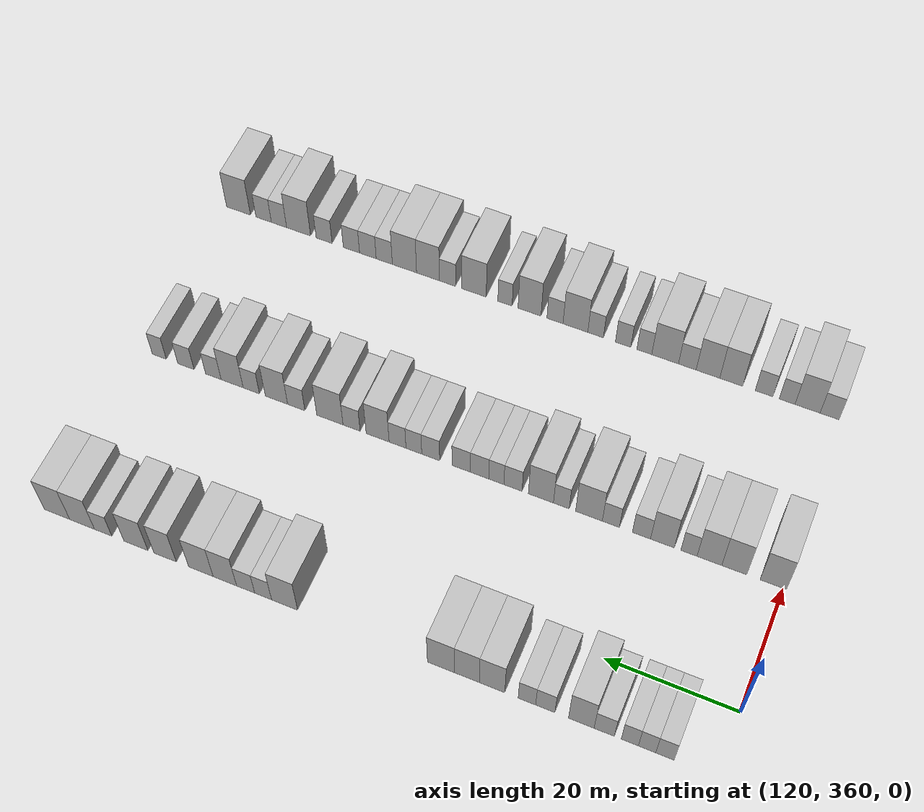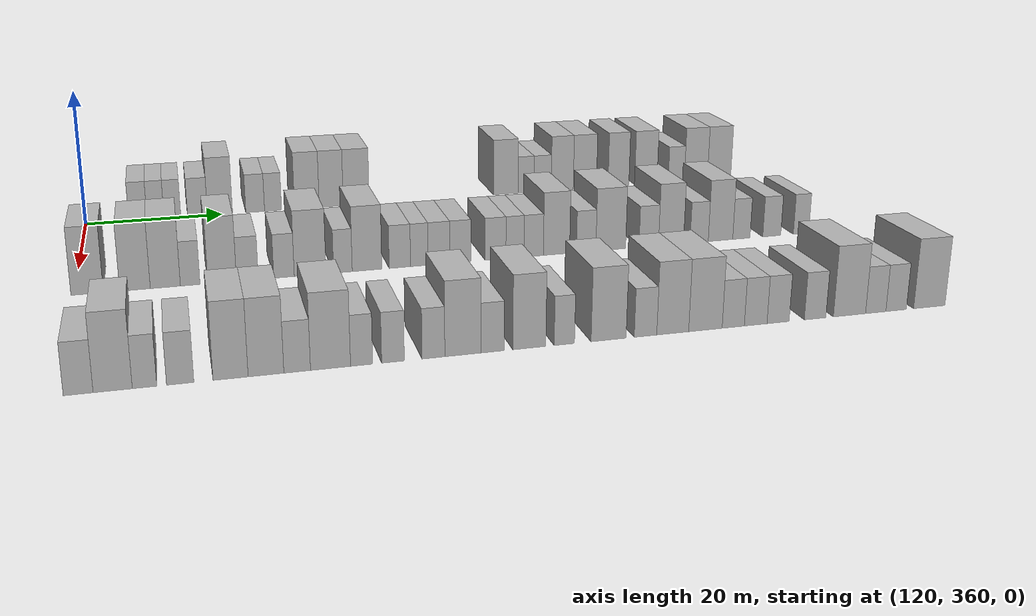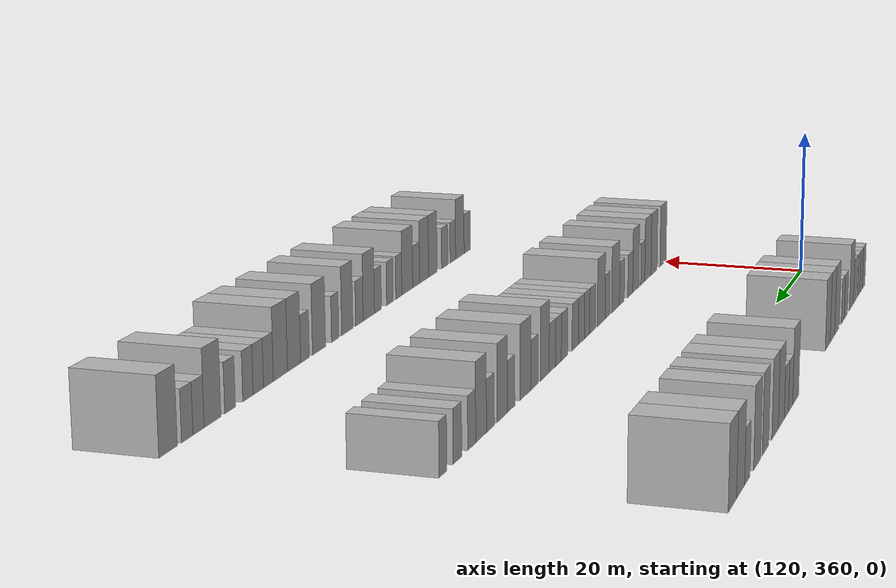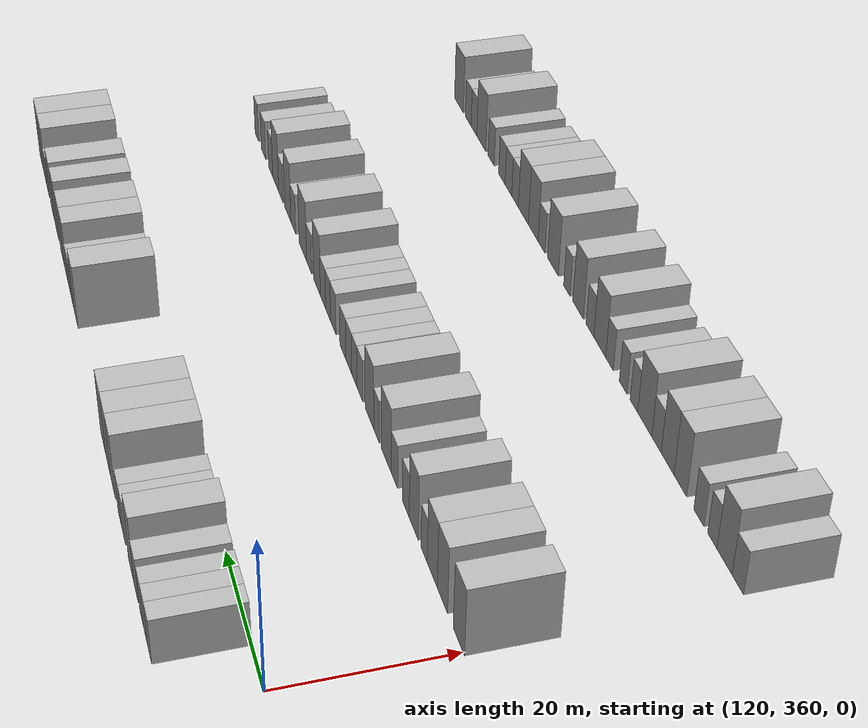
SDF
<sdf version="1.6">
 <world name="default">
  <model name="building_875">
   <static>1</static>
   <pose>115.0000 367.5334 0 0.000000 0.000000 0.000000</pose>
   <link name="link">
    <pose>0 0 3.00 0 0 0</pose>
    <collision name="collision"><geometry><box><size>10.0000 2.6521 6.0000</size></box></geometry></collision>
    <visual name="visual">
     <cast_shadows>0</cast_shadows>
     <geometry><box><size>10.0000 2.6521 6.0000</size></box></geometry>
     <material>
      <script>
       <uri>model://HANNAS_wall/materials/scripts</uri>
       <uri>model://HANNAS_wall/materials/textures</uri>
       <name>vrc/HANNAS_wall</name>
      </script>
     </material>
    </visual>
   </link>
  </model>
  <model name="building_876">
   <static>1</static>
   <pose>115.0000 370.1049 0 0.000000 0.000000 0.000000</pose>
   <link name="link">
    <pose>0 0 3.00 0 0 0</pose>
    <collision name="collision"><geometry><box><size>10.0000 2.4908 6.0000</size></box></geometry></collision>
    <visual name="visual">
     <cast_shadows>0</cast_shadows>
     <geometry><box><size>10.0000 2.4908 6.0000</size></box></geometry>
     <material>
      <script>
       <uri>model://HANNAS_wall/materials/scripts</uri>
       <uri>model://HANNAS_wall/materials/textures</uri>
       <name>vrc/HANNAS_wall</name>
      </script>
     </material>
    </visual>
   </link>
  </model>
  <model name="building_877">
   <static>1</static>
   <pose>115.0000 372.5873 0 0.000000 0.000000 0.000000</pose>
   <link name="link">
    <pose>0 0 3.00 0 0 0</pose>
    <collision name="collision"><geometry><box><size>10.0000 2.4740 6.0000</size></box></geometry></collision>
    <visual name="visual">
     <cast_shadows>0</cast_shadows>
     <geometry><box><size>10.0000 2.4740 6.0000</size></box></geometry>
     <material>
      <script>
       <uri>model://HANNAS_wall/materials/scripts</uri>
       <uri>model://HANNAS_wall/materials/textures</uri>
       <name>vrc/HANNAS_wall</name>
      </script>
     </material>
    </visual>
   </link>
  </model>
  <model name="building_878">
   <static>1</static>
   <pose>115.0000 376.3012 0 0.000000 0.000000 0.000000</pose>
   <link name="link">
    <pose>0 0 3.00 0 0 0</pose>
    <collision name="collision"><geometry><box><size>10.0000 2.9538 6.0000</size></box></geometry></collision>
    <visual name="visual">
     <cast_shadows>0</cast_shadows>
     <geometry><box><size>10.0000 2.9538 6.0000</size></box></geometry>
     <material>
      <script>
       <uri>model://HANNAS_wall/materials/scripts</uri>
       <uri>model://HANNAS_wall/materials/textures</uri>
       <name>vrc/HANNAS_wall</name>
      </script>
     </material>
    </visual>
   </link>
  </model>
  <model name="building_879">
   <static>1</static>
   <pose>115.0000 379.6534 0 0.000000 0.000000 0.000000</pose>
   <link name="link">
    <pose>0 0 4.50 0 0 0</pose>
    <collision name="collision"><geometry><box><size>10.0000 3.7506 9.0000</size></box></geometry></collision>
    <visual name="visual">
     <cast_shadows>0</cast_shadows>
     <geometry><box><size>10.0000 3.7506 9.0000</size></box></geometry>
     <material>
      <script>
       <uri>model://HANNAS_wall/materials/scripts</uri>
       <uri>model://HANNAS_wall/materials/textures</uri>
       <name>vrc/HANNAS_wall</name>
      </script>
     </material>
    </visual>
   </link>
  </model>
  <model name="building_880">
   <static>1</static>
   <pose>115.0000 384.9515 0 0.000000 0.000000 0.000000</pose>
   <link name="link">
    <pose>0 0 3.00 0 0 0</pose>
    <collision name="collision"><geometry><box><size>10.0000 2.8456 6.0000</size></box></geometry></collision>
    <visual name="visual">
     <cast_shadows>0</cast_shadows>
     <geometry><box><size>10.0000 2.8456 6.0000</size></box></geometry>
     <material>
      <script>
       <uri>model://HANNAS_wall/materials/scripts</uri>
       <uri>model://HANNAS_wall/materials/textures</uri>
       <name>vrc/HANNAS_wall</name>
      </script>
     </material>
    </visual>
   </link>
  </model>
  <model name="building_881">
   <static>1</static>
   <pose>115.0000 387.6679 0 0.000000 0.000000 0.000000</pose>
   <link name="link">
    <pose>0 0 3.00 0 0 0</pose>
    <collision name="collision"><geometry><box><size>10.0000 2.5873 6.0000</size></box></geometry></collision>
    <visual name="visual">
     <cast_shadows>0</cast_shadows>
     <geometry><box><size>10.0000 2.5873 6.0000</size></box></geometry>
     <material>
      <script>
       <uri>model://HANNAS_wall/materials/scripts</uri>
       <uri>model://HANNAS_wall/materials/textures</uri>
       <name>vrc/HANNAS_wall</name>
      </script>
     </material>
    </visual>
   </link>
  </model>
  <model name="building_882">
   <static>1</static>
   <pose>115.0000 392.8706 0 0.000000 0.000000 0.000000</pose>
   <link name="link">
    <pose>0 0 4.50 0 0 0</pose>
    <collision name="collision"><geometry><box><size>10.0000 3.8180 9.0000</size></box></geometry></collision>
    <visual name="visual">
     <cast_shadows>0</cast_shadows>
     <geometry><box><size>10.0000 3.8180 9.0000</size></box></geometry>
     <material>
      <script>
       <uri>model://HANNAS_wall/materials/scripts</uri>
       <uri>model://HANNAS_wall/materials/textures</uri>
       <name>vrc/HANNAS_wall</name>
      </script>
     </material>
    </visual>
   </link>
  </model>
  <model name="building_883">
   <static>1</static>
   <pose>115.0000 396.6577 0 0.000000 0.000000 0.000000</pose>
   <link name="link">
    <pose>0 0 4.50 0 0 0</pose>
    <collision name="collision"><geometry><box><size>10.0000 3.7561 9.0000</size></box></geometry></collision>
    <visual name="visual">
     <cast_shadows>0</cast_shadows>
     <geometry><box><size>10.0000 3.7561 9.0000</size></box></geometry>
     <material>
      <script>
       <uri>model://HANNAS_wall/materials/scripts</uri>
       <uri>model://HANNAS_wall/materials/textures</uri>
       <name>vrc/HANNAS_wall</name>
      </script>
     </material>
    </visual>
   </link>
  </model>
  <model name="building_884">
   <static>1</static>
   <pose>115.0000 400.5764 0 0.000000 0.000000 0.000000</pose>
   <link name="link">
    <pose>0 0 4.50 0 0 0</pose>
    <collision name="collision"><geometry><box><size>10.0000 4.0813 9.0000</size></box></geometry></collision>
    <visual name="visual">
     <cast_shadows>0</cast_shadows>
     <geometry><box><size>10.0000 4.0813 9.0000</size></box></geometry>
     <material>
      <script>
       <uri>model://HANNAS_wall/materials/scripts</uri>
       <uri>model://HANNAS_wall/materials/textures</uri>
       <name>vrc/HANNAS_wall</name>
      </script>
     </material>
    </visual>
   </link>
  </model>
  <model name="building_885">
   <static>1</static>
   <pose>115.0000 424.7975 0 0.000000 0.000000 0.000000</pose>
   <link name="link">
    <pose>0 0 4.50 0 0 0</pose>
    <collision name="collision"><geometry><box><size>10.0000 4.1203 9.0000</size></box></geometry></collision>
    <visual name="visual">
     <cast_shadows>0</cast_shadows>
     <geometry><box><size>10.0000 4.1203 9.0000</size></box></geometry>
     <material>
      <script>
       <uri>model://HANNAS_wall/materials/scripts</uri>
       <uri>model://HANNAS_wall/materials/textures</uri>
       <name>vrc/HANNAS_wall</name>
      </script>
     </material>
    </visual>
   </link>
  </model>
  <model name="building_886">
   <static>1</static>
   <pose>115.0000 428.1959 0 0.000000 0.000000 0.000000</pose>
   <link name="link">
    <pose>0 0 3.00 0 0 0</pose>
    <collision name="collision"><geometry><box><size>10.0000 2.6764 6.0000</size></box></geometry></collision>
    <visual name="visual">
     <cast_shadows>0</cast_shadows>
     <geometry><box><size>10.0000 2.6764 6.0000</size></box></geometry>
     <material>
      <script>
       <uri>model://HANNAS_wall/materials/scripts</uri>
       <uri>model://HANNAS_wall/materials/textures</uri>
       <name>vrc/HANNAS_wall</name>
      </script>
     </material>
    </visual>
   </link>
  </model>
  <model name="building_887">
   <static>1</static>
   <pose>115.0000 430.9838 0 0.000000 0.000000 0.000000</pose>
   <link name="link">
    <pose>0 0 3.00 0 0 0</pose>
    <collision name="collision"><geometry><box><size>10.0000 2.8994 6.0000</size></box></geometry></collision>
    <visual name="visual">
     <cast_shadows>0</cast_shadows>
     <geometry><box><size>10.0000 2.8994 6.0000</size></box></geometry>
     <material>
      <script>
       <uri>model://HANNAS_wall/materials/scripts</uri>
       <uri>model://HANNAS_wall/materials/textures</uri>
       <name>vrc/HANNAS_wall</name>
      </script>
     </material>
    </visual>
   </link>
  </model>
  <model name="building_888">
   <static>1</static>
   <pose>115.0000 434.3149 0 0.000000 0.000000 0.000000</pose>
   <link name="link">
    <pose>0 0 4.50 0 0 0</pose>
    <collision name="collision"><geometry><box><size>10.0000 3.7628 9.0000</size></box></geometry></collision>
    <visual name="visual">
     <cast_shadows>0</cast_shadows>
     <geometry><box><size>10.0000 3.7628 9.0000</size></box></geometry>
     <material>
      <script>
       <uri>model://HANNAS_wall/materials/scripts</uri>
       <uri>model://HANNAS_wall/materials/textures</uri>
       <name>vrc/HANNAS_wall</name>
      </script>
     </material>
    </visual>
   </link>
  </model>
  <model name="building_889">
   <static>1</static>
   <pose>115.0000 438.1872 0 0.000000 0.000000 0.000000</pose>
   <link name="link">
    <pose>0 0 4.50 0 0 0</pose>
    <collision name="collision"><geometry><box><size>10.0000 3.9818 9.0000</size></box></geometry></collision>
    <visual name="visual">
     <cast_shadows>0</cast_shadows>
     <geometry><box><size>10.0000 3.9818 9.0000</size></box></geometry>
     <material>
      <script>
       <uri>model://HANNAS_wall/materials/scripts</uri>
       <uri>model://HANNAS_wall/materials/textures</uri>
       <name>vrc/HANNAS_wall</name>
      </script>
     </material>
    </visual>
   </link>
  </model>
  <model name="building_890">
   <static>1</static>
   <pose>115.0000 443.9997 0 0.000000 0.000000 0.000000</pose>
   <link name="link">
    <pose>0 0 4.50 0 0 0</pose>
    <collision name="collision"><geometry><box><size>10.0000 3.6431 9.0000</size></box></geometry></collision>
    <visual name="visual">
     <cast_shadows>0</cast_shadows>
     <geometry><box><size>10.0000 3.6431 9.0000</size></box></geometry>
     <material>
      <script>
       <uri>model://HANNAS_wall/materials/scripts</uri>
       <uri>model://HANNAS_wall/materials/textures</uri>
       <name>vrc/HANNAS_wall</name>
      </script>
     </material>
    </visual>
   </link>
  </model>
  <model name="building_891">
   <static>1</static>
   <pose>115.0000 448.7956 0 0.000000 0.000000 0.000000</pose>
   <link name="link">
    <pose>0 0 4.50 0 0 0</pose>
    <collision name="collision"><geometry><box><size>10.0000 3.9488 9.0000</size></box></geometry></collision>
    <visual name="visual">
     <cast_shadows>0</cast_shadows>
     <geometry><box><size>10.0000 3.9488 9.0000</size></box></geometry>
     <material>
      <script>
       <uri>model://HANNAS_wall/materials/scripts</uri>
       <uri>model://HANNAS_wall/materials/textures</uri>
       <name>vrc/HANNAS_wall</name>
      </script>
     </material>
    </visual>
   </link>
  </model>
  <model name="building_892">
   <static>1</static>
   <pose>115.0000 454.2060 0 0.000000 0.000000 0.000000</pose>
   <link name="link">
    <pose>0 0 3.00 0 0 0</pose>
    <collision name="collision"><geometry><box><size>10.0000 2.8719 6.0000</size></box></geometry></collision>
    <visual name="visual">
     <cast_shadows>0</cast_shadows>
     <geometry><box><size>10.0000 2.8719 6.0000</size></box></geometry>
     <material>
      <script>
       <uri>model://HANNAS_wall/materials/scripts</uri>
       <uri>model://HANNAS_wall/materials/textures</uri>
       <name>vrc/HANNAS_wall</name>
      </script>
     </material>
    </visual>
   </link>
  </model>
  <model name="building_893">
   <static>1</static>
   <pose>115.0000 457.7169 0 0.000000 0.000000 0.000000</pose>
   <link name="link">
    <pose>0 0 4.50 0 0 0</pose>
    <collision name="collision"><geometry><box><size>10.0000 4.1500 9.0000</size></box></geometry></collision>
    <visual name="visual">
     <cast_shadows>0</cast_shadows>
     <geometry><box><size>10.0000 4.1500 9.0000</size></box></geometry>
     <material>
      <script>
       <uri>model://HANNAS_wall/materials/scripts</uri>
       <uri>model://HANNAS_wall/materials/textures</uri>
       <name>vrc/HANNAS_wall</name>
      </script>
     </material>
    </visual>
   </link>
  </model>
  <model name="building_894">
   <static>1</static>
   <pose>115.0000 461.9005 0 0.000000 0.000000 0.000000</pose>
   <link name="link">
    <pose>0 0 4.50 0 0 0</pose>
    <collision name="collision"><geometry><box><size>10.0000 4.2171 9.0000</size></box></geometry></collision>
    <visual name="visual">
     <cast_shadows>0</cast_shadows>
     <geometry><box><size>10.0000 4.2171 9.0000</size></box></geometry>
     <material>
      <script>
       <uri>model://HANNAS_wall/materials/scripts</uri>
       <uri>model://HANNAS_wall/materials/textures</uri>
       <name>vrc/HANNAS_wall</name>
      </script>
     </material>
    </visual>
   </link>
  </model>
  <model name="building_1100">
   <static>1</static>
   <pose>145.0000 361.5189 0 0.000000 0.000000 0.000000</pose>
   <link name="link">
    <pose>0 0 4.50 0 0 0</pose>
    <collision name="collision"><geometry><box><size>10.0000 3.9511 9.0000</size></box></geometry></collision>
    <visual name="visual">
     <cast_shadows>0</cast_shadows>
     <geometry><box><size>10.0000 3.9511 9.0000</size></box></geometry>
     <material>
      <script>
       <uri>model://HANNAS_wall/materials/scripts</uri>
       <uri>model://HANNAS_wall/materials/textures</uri>
       <name>vrc/HANNAS_wall</name>
      </script>
     </material>
    </visual>
   </link>
  </model>
  <model name="building_1101">
   <static>1</static>
   <pose>145.0000 367.3854 0 0.000000 0.000000 0.000000</pose>
   <link name="link">
    <pose>0 0 4.50 0 0 0</pose>
    <collision name="collision"><geometry><box><size>10.0000 3.7818 9.0000</size></box></geometry></collision>
    <visual name="visual">
     <cast_shadows>0</cast_shadows>
     <geometry><box><size>10.0000 3.7818 9.0000</size></box></geometry>
     <material>
      <script>
       <uri>model://HANNAS_wall/materials/scripts</uri>
       <uri>model://HANNAS_wall/materials/textures</uri>
       <name>vrc/HANNAS_wall</name>
      </script>
     </material>
    </visual>
   </link>
  </model>
  <model name="building_1102">
   <static>1</static>
   <pose>145.0000 371.1567 0 0.000000 0.000000 0.000000</pose>
   <link name="link">
    <pose>0 0 4.50 0 0 0</pose>
    <collision name="collision"><geometry><box><size>10.0000 3.7608 9.0000</size></box></geometry></collision>
    <visual name="visual">
     <cast_shadows>0</cast_shadows>
     <geometry><box><size>10.0000 3.7608 9.0000</size></box></geometry>
     <material>
      <script>
       <uri>model://HANNAS_wall/materials/scripts</uri>
       <uri>model://HANNAS_wall/materials/textures</uri>
       <name>vrc/HANNAS_wall</name>
      </script>
     </material>
    </visual>
   </link>
  </model>
  <model name="building_1103">
   <static>1</static>
   <pose>145.0000 374.2748 0 0.000000 0.000000 0.000000</pose>
   <link name="link">
    <pose>0 0 3.00 0 0 0</pose>
    <collision name="collision"><geometry><box><size>10.0000 2.4753 6.0000</size></box></geometry></collision>
    <visual name="visual">
     <cast_shadows>0</cast_shadows>
     <geometry><box><size>10.0000 2.4753 6.0000</size></box></geometry>
     <material>
      <script>
       <uri>model://HANNAS_wall/materials/scripts</uri>
       <uri>model://HANNAS_wall/materials/textures</uri>
       <name>vrc/HANNAS_wall</name>
      </script>
     </material>
    </visual>
   </link>
  </model>
  <model name="building_1104">
   <static>1</static>
   <pose>145.0000 378.3397 0 0.000000 0.000000 0.000000</pose>
   <link name="link">
    <pose>0 0 4.50 0 0 0</pose>
    <collision name="collision"><geometry><box><size>10.0000 3.6546 9.0000</size></box></geometry></collision>
    <visual name="visual">
     <cast_shadows>0</cast_shadows>
     <geometry><box><size>10.0000 3.6546 9.0000</size></box></geometry>
     <material>
      <script>
       <uri>model://HANNAS_wall/materials/scripts</uri>
       <uri>model://HANNAS_wall/materials/textures</uri>
       <name>vrc/HANNAS_wall</name>
      </script>
     </material>
    </visual>
   </link>
  </model>
  <model name="building_1105">
   <static>1</static>
   <pose>145.0000 381.5733 0 0.000000 0.000000 0.000000</pose>
   <link name="link">
    <pose>0 0 3.00 0 0 0</pose>
    <collision name="collision"><geometry><box><size>10.0000 2.8126 6.0000</size></box></geometry></collision>
    <visual name="visual">
     <cast_shadows>0</cast_shadows>
     <geometry><box><size>10.0000 2.8126 6.0000</size></box></geometry>
     <material>
      <script>
       <uri>model://HANNAS_wall/materials/scripts</uri>
       <uri>model://HANNAS_wall/materials/textures</uri>
       <name>vrc/HANNAS_wall</name>
      </script>
     </material>
    </visual>
   </link>
  </model>
  <model name="building_1106">
   <static>1</static>
   <pose>145.0000 386.3184 0 0.000000 0.000000 0.000000</pose>
   <link name="link">
    <pose>0 0 3.00 0 0 0</pose>
    <collision name="collision"><geometry><box><size>10.0000 2.6776 6.0000</size></box></geometry></collision>
    <visual name="visual">
     <cast_shadows>0</cast_shadows>
     <geometry><box><size>10.0000 2.6776 6.0000</size></box></geometry>
     <material>
      <script>
       <uri>model://HANNAS_wall/materials/scripts</uri>
       <uri>model://HANNAS_wall/materials/textures</uri>
       <name>vrc/HANNAS_wall</name>
      </script>
     </material>
    </visual>
   </link>
  </model>
  <model name="building_1107">
   <static>1</static>
   <pose>145.0000 389.7499 0 0.000000 0.000000 0.000000</pose>
   <link name="link">
    <pose>0 0 4.50 0 0 0</pose>
    <collision name="collision"><geometry><box><size>10.0000 4.1855 9.0000</size></box></geometry></collision>
    <visual name="visual">
     <cast_shadows>0</cast_shadows>
     <geometry><box><size>10.0000 4.1855 9.0000</size></box></geometry>
     <material>
      <script>
       <uri>model://HANNAS_wall/materials/scripts</uri>
       <uri>model://HANNAS_wall/materials/textures</uri>
       <name>vrc/HANNAS_wall</name>
      </script>
     </material>
    </visual>
   </link>
  </model>
  <model name="building_1108">
   <static>1</static>
   <pose>145.0000 394.0889 0 0.000000 0.000000 0.000000</pose>
   <link name="link">
    <pose>0 0 3.00 0 0 0</pose>
    <collision name="collision"><geometry><box><size>10.0000 2.4924 6.0000</size></box></geometry></collision>
    <visual name="visual">
     <cast_shadows>0</cast_shadows>
     <geometry><box><size>10.0000 2.4924 6.0000</size></box></geometry>
     <material>
      <script>
       <uri>model://HANNAS_wall/materials/scripts</uri>
       <uri>model://HANNAS_wall/materials/textures</uri>
       <name>vrc/HANNAS_wall</name>
      </script>
     </material>
    </visual>
   </link>
  </model>
  <model name="building_1109">
   <static>1</static>
   <pose>145.0000 397.3264 0 0.000000 0.000000 0.000000</pose>
   <link name="link">
    <pose>0 0 4.50 0 0 0</pose>
    <collision name="collision"><geometry><box><size>10.0000 3.9826 9.0000</size></box></geometry></collision>
    <visual name="visual">
     <cast_shadows>0</cast_shadows>
     <geometry><box><size>10.0000 3.9826 9.0000</size></box></geometry>
     <material>
      <script>
       <uri>model://HANNAS_wall/materials/scripts</uri>
       <uri>model://HANNAS_wall/materials/textures</uri>
       <name>vrc/HANNAS_wall</name>
      </script>
     </material>
    </visual>
   </link>
  </model>
  <model name="building_1110">
   <static>1</static>
   <pose>145.0000 401.7723 0 0.000000 0.000000 0.000000</pose>
   <link name="link">
    <pose>0 0 3.00 0 0 0</pose>
    <collision name="collision"><geometry><box><size>10.0000 2.9092 6.0000</size></box></geometry></collision>
    <visual name="visual">
     <cast_shadows>0</cast_shadows>
     <geometry><box><size>10.0000 2.9092 6.0000</size></box></geometry>
     <material>
      <script>
       <uri>model://HANNAS_wall/materials/scripts</uri>
       <uri>model://HANNAS_wall/materials/textures</uri>
       <name>vrc/HANNAS_wall</name>
      </script>
     </material>
    </visual>
   </link>
  </model>
  <model name="building_1111">
   <static>1</static>
   <pose>145.0000 404.4385 0 0.000000 0.000000 0.000000</pose>
   <link name="link">
    <pose>0 0 3.00 0 0 0</pose>
    <collision name="collision"><geometry><box><size>10.0000 2.4231 6.0000</size></box></geometry></collision>
    <visual name="visual">
     <cast_shadows>0</cast_shadows>
     <geometry><box><size>10.0000 2.4231 6.0000</size></box></geometry>
     <material>
      <script>
       <uri>model://HANNAS_wall/materials/scripts</uri>
       <uri>model://HANNAS_wall/materials/textures</uri>
       <name>vrc/HANNAS_wall</name>
      </script>
     </material>
    </visual>
   </link>
  </model>
  <model name="building_1112">
   <static>1</static>
   <pose>145.0000 407.1449 0 0.000000 0.000000 0.000000</pose>
   <link name="link">
    <pose>0 0 3.00 0 0 0</pose>
    <collision name="collision"><geometry><box><size>10.0000 2.9897 6.0000</size></box></geometry></collision>
    <visual name="visual">
     <cast_shadows>0</cast_shadows>
     <geometry><box><size>10.0000 2.9897 6.0000</size></box></geometry>
     <material>
      <script>
       <uri>model://HANNAS_wall/materials/scripts</uri>
       <uri>model://HANNAS_wall/materials/textures</uri>
       <name>vrc/HANNAS_wall</name>
      </script>
     </material>
    </visual>
   </link>
  </model>
  <model name="building_1113">
   <static>1</static>
   <pose>145.0000 410.1144 0 0.000000 0.000000 0.000000</pose>
   <link name="link">
    <pose>0 0 3.00 0 0 0</pose>
    <collision name="collision"><geometry><box><size>10.0000 2.9493 6.0000</size></box></geometry></collision>
    <visual name="visual">
     <cast_shadows>0</cast_shadows>
     <geometry><box><size>10.0000 2.9493 6.0000</size></box></geometry>
     <material>
      <script>
       <uri>model://HANNAS_wall/materials/scripts</uri>
       <uri>model://HANNAS_wall/materials/textures</uri>
       <name>vrc/HANNAS_wall</name>
      </script>
     </material>
    </visual>
   </link>
  </model>
  <model name="building_1114">
   <static>1</static>
   <pose>145.0000 415.0558 0 0.000000 0.000000 0.000000</pose>
   <link name="link">
    <pose>0 0 3.00 0 0 0</pose>
    <collision name="collision"><geometry><box><size>10.0000 2.9335 6.0000</size></box></geometry></collision>
    <visual name="visual">
     <cast_shadows>0</cast_shadows>
     <geometry><box><size>10.0000 2.9335 6.0000</size></box></geometry>
     <material>
      <script>
       <uri>model://HANNAS_wall/materials/scripts</uri>
       <uri>model://HANNAS_wall/materials/textures</uri>
       <name>vrc/HANNAS_wall</name>
      </script>
     </material>
    </visual>
   </link>
  </model>
  <model name="building_1115">
   <static>1</static>
   <pose>145.0000 417.8156 0 0.000000 0.000000 0.000000</pose>
   <link name="link">
    <pose>0 0 3.00 0 0 0</pose>
    <collision name="collision"><geometry><box><size>10.0000 2.5860 6.0000</size></box></geometry></collision>
    <visual name="visual">
     <cast_shadows>0</cast_shadows>
     <geometry><box><size>10.0000 2.5860 6.0000</size></box></geometry>
     <material>
      <script>
       <uri>model://HANNAS_wall/materials/scripts</uri>
       <uri>model://HANNAS_wall/materials/textures</uri>
       <name>vrc/HANNAS_wall</name>
      </script>
     </material>
    </visual>
   </link>
  </model>
  <model name="building_1116">
   <static>1</static>
   <pose>145.0000 420.4935 0 0.000000 0.000000 0.000000</pose>
   <link name="link">
    <pose>0 0 3.00 0 0 0</pose>
    <collision name="collision"><geometry><box><size>10.0000 2.7699 6.0000</size></box></geometry></collision>
    <visual name="visual">
     <cast_shadows>0</cast_shadows>
     <geometry><box><size>10.0000 2.7699 6.0000</size></box></geometry>
     <material>
      <script>
       <uri>model://HANNAS_wall/materials/scripts</uri>
       <uri>model://HANNAS_wall/materials/textures</uri>
       <name>vrc/HANNAS_wall</name>
      </script>
     </material>
    </visual>
   </link>
  </model>
  <model name="building_1117">
   <static>1</static>
   <pose>145.0000 423.7769 0 0.000000 0.000000 0.000000</pose>
   <link name="link">
    <pose>0 0 4.50 0 0 0</pose>
    <collision name="collision"><geometry><box><size>10.0000 3.7969 9.0000</size></box></geometry></collision>
    <visual name="visual">
     <cast_shadows>0</cast_shadows>
     <geometry><box><size>10.0000 3.7969 9.0000</size></box></geometry>
     <material>
      <script>
       <uri>model://HANNAS_wall/materials/scripts</uri>
       <uri>model://HANNAS_wall/materials/textures</uri>
       <name>vrc/HANNAS_wall</name>
      </script>
     </material>
    </visual>
   </link>
  </model>
  <model name="building_1118">
   <static>1</static>
   <pose>145.0000 428.1019 0 0.000000 0.000000 0.000000</pose>
   <link name="link">
    <pose>0 0 3.00 0 0 0</pose>
    <collision name="collision"><geometry><box><size>10.0000 2.8532 6.0000</size></box></geometry></collision>
    <visual name="visual">
     <cast_shadows>0</cast_shadows>
     <geometry><box><size>10.0000 2.8532 6.0000</size></box></geometry>
     <material>
      <script>
       <uri>model://HANNAS_wall/materials/scripts</uri>
       <uri>model://HANNAS_wall/materials/textures</uri>
       <name>vrc/HANNAS_wall</name>
      </script>
     </material>
    </visual>
   </link>
  </model>
  <model name="building_1119">
   <static>1</static>
   <pose>145.0000 431.7307 0 0.000000 0.000000 0.000000</pose>
   <link name="link">
    <pose>0 0 4.50 0 0 0</pose>
    <collision name="collision"><geometry><box><size>10.0000 4.4043 9.0000</size></box></geometry></collision>
    <visual name="visual">
     <cast_shadows>0</cast_shadows>
     <geometry><box><size>10.0000 4.4043 9.0000</size></box></geometry>
     <material>
      <script>
       <uri>model://HANNAS_wall/materials/scripts</uri>
       <uri>model://HANNAS_wall/materials/textures</uri>
       <name>vrc/HANNAS_wall</name>
      </script>
     </material>
    </visual>
   </link>
  </model>
  <model name="building_1120">
   <static>1</static>
   <pose>145.0000 437.3965 0 0.000000 0.000000 0.000000</pose>
   <link name="link">
    <pose>0 0 3.00 0 0 0</pose>
    <collision name="collision"><geometry><box><size>10.0000 2.9274 6.0000</size></box></geometry></collision>
    <visual name="visual">
     <cast_shadows>0</cast_shadows>
     <geometry><box><size>10.0000 2.9274 6.0000</size></box></geometry>
     <material>
      <script>
       <uri>model://HANNAS_wall/materials/scripts</uri>
       <uri>model://HANNAS_wall/materials/textures</uri>
       <name>vrc/HANNAS_wall</name>
      </script>
     </material>
    </visual>
   </link>
  </model>
  <model name="building_1121">
   <static>1</static>
   <pose>145.0000 440.7563 0 0.000000 0.000000 0.000000</pose>
   <link name="link">
    <pose>0 0 4.50 0 0 0</pose>
    <collision name="collision"><geometry><box><size>10.0000 3.7921 9.0000</size></box></geometry></collision>
    <visual name="visual">
     <cast_shadows>0</cast_shadows>
     <geometry><box><size>10.0000 3.7921 9.0000</size></box></geometry>
     <material>
      <script>
       <uri>model://HANNAS_wall/materials/scripts</uri>
       <uri>model://HANNAS_wall/materials/textures</uri>
       <name>vrc/HANNAS_wall</name>
      </script>
     </material>
    </visual>
   </link>
  </model>
  <model name="building_1122">
   <static>1</static>
   <pose>145.0000 445.0473 0 0.000000 0.000000 0.000000</pose>
   <link name="link">
    <pose>0 0 3.00 0 0 0</pose>
    <collision name="collision"><geometry><box><size>10.0000 2.7899 6.0000</size></box></geometry></collision>
    <visual name="visual">
     <cast_shadows>0</cast_shadows>
     <geometry><box><size>10.0000 2.7899 6.0000</size></box></geometry>
     <material>
      <script>
       <uri>model://HANNAS_wall/materials/scripts</uri>
       <uri>model://HANNAS_wall/materials/textures</uri>
       <name>vrc/HANNAS_wall</name>
      </script>
     </material>
    </visual>
   </link>
  </model>
  <model name="building_1123">
   <static>1</static>
   <pose>145.0000 448.3377 0 0.000000 0.000000 0.000000</pose>
   <link name="link">
    <pose>0 0 4.50 0 0 0</pose>
    <collision name="collision"><geometry><box><size>10.0000 3.7908 9.0000</size></box></geometry></collision>
    <visual name="visual">
     <cast_shadows>0</cast_shadows>
     <geometry><box><size>10.0000 3.7908 9.0000</size></box></geometry>
     <material>
      <script>
       <uri>model://HANNAS_wall/materials/scripts</uri>
       <uri>model://HANNAS_wall/materials/textures</uri>
       <name>vrc/HANNAS_wall</name>
      </script>
     </material>
    </visual>
   </link>
  </model>
  <model name="building_1124">
   <static>1</static>
   <pose>145.0000 451.5788 0 0.000000 0.000000 0.000000</pose>
   <link name="link">
    <pose>0 0 3.00 0 0 0</pose>
    <collision name="collision"><geometry><box><size>10.0000 2.6914 6.0000</size></box></geometry></collision>
    <visual name="visual">
     <cast_shadows>0</cast_shadows>
     <geometry><box><size>10.0000 2.6914 6.0000</size></box></geometry>
     <material>
      <script>
       <uri>model://HANNAS_wall/materials/scripts</uri>
       <uri>model://HANNAS_wall/materials/textures</uri>
       <name>vrc/HANNAS_wall</name>
      </script>
     </material>
    </visual>
   </link>
  </model>
  <model name="building_1125">
   <static>1</static>
   <pose>145.0000 456.3458 0 0.000000 0.000000 0.000000</pose>
   <link name="link">
    <pose>0 0 3.00 0 0 0</pose>
    <collision name="collision"><geometry><box><size>10.0000 2.8426 6.0000</size></box></geometry></collision>
    <visual name="visual">
     <cast_shadows>0</cast_shadows>
     <geometry><box><size>10.0000 2.8426 6.0000</size></box></geometry>
     <material>
      <script>
       <uri>model://HANNAS_wall/materials/scripts</uri>
       <uri>model://HANNAS_wall/materials/textures</uri>
       <name>vrc/HANNAS_wall</name>
      </script>
     </material>
    </visual>
   </link>
  </model>
  <model name="building_1126">
   <static>1</static>
   <pose>145.0000 460.9935 0 0.000000 0.000000 0.000000</pose>
   <link name="link">
    <pose>0 0 3.00 0 0 0</pose>
    <collision name="collision"><geometry><box><size>10.0000 2.4528 6.0000</size></box></geometry></collision>
    <visual name="visual">
     <cast_shadows>0</cast_shadows>
     <geometry><box><size>10.0000 2.4528 6.0000</size></box></geometry>
     <material>
      <script>
       <uri>model://HANNAS_wall/materials/scripts</uri>
       <uri>model://HANNAS_wall/materials/textures</uri>
       <name>vrc/HANNAS_wall</name>
      </script>
     </material>
    </visual>
   </link>
  </model>
  <model name="building_1312">
   <static>1</static>
   <pose>175.0000 361.9008 0 0.000000 0.000000 0.000000</pose>
   <link name="link">
    <pose>0 0 3.00 0 0 0</pose>
    <collision name="collision"><geometry><box><size>10.0000 2.9924 6.0000</size></box></geometry></collision>
    <visual name="visual">
     <cast_shadows>0</cast_shadows>
     <geometry><box><size>10.0000 2.9924 6.0000</size></box></geometry>
     <material>
      <script>
       <uri>model://HANNAS_wall/materials/scripts</uri>
       <uri>model://HANNAS_wall/materials/textures</uri>
       <name>vrc/HANNAS_wall</name>
      </script>
     </material>
    </visual>
   </link>
  </model>
  <model name="building_1313">
   <static>1</static>
   <pose>175.0000 365.3822 0 0.000000 0.000000 0.000000</pose>
   <link name="link">
    <pose>0 0 4.50 0 0 0</pose>
    <collision name="collision"><geometry><box><size>10.0000 3.9704 9.0000</size></box></geometry></collision>
    <visual name="visual">
     <cast_shadows>0</cast_shadows>
     <geometry><box><size>10.0000 3.9704 9.0000</size></box></geometry>
     <material>
      <script>
       <uri>model://HANNAS_wall/materials/scripts</uri>
       <uri>model://HANNAS_wall/materials/textures</uri>
       <name>vrc/HANNAS_wall</name>
      </script>
     </material>
    </visual>
   </link>
  </model>
  <model name="building_1314">
   <static>1</static>
   <pose>175.0000 368.6258 0 0.000000 0.000000 0.000000</pose>
   <link name="link">
    <pose>0 0 3.00 0 0 0</pose>
    <collision name="collision"><geometry><box><size>10.0000 2.5166 6.0000</size></box></geometry></collision>
    <visual name="visual">
     <cast_shadows>0</cast_shadows>
     <geometry><box><size>10.0000 2.5166 6.0000</size></box></geometry>
     <material>
      <script>
       <uri>model://HANNAS_wall/materials/scripts</uri>
       <uri>model://HANNAS_wall/materials/textures</uri>
       <name>vrc/HANNAS_wall</name>
      </script>
     </material>
    </visual>
   </link>
  </model>
  <model name="building_1315">
   <static>1</static>
   <pose>175.0000 372.3040 0 0.000000 0.000000 0.000000</pose>
   <link name="link">
    <pose>0 0 3.00 0 0 0</pose>
    <collision name="collision"><geometry><box><size>10.0000 2.8398 6.0000</size></box></geometry></collision>
    <visual name="visual">
     <cast_shadows>0</cast_shadows>
     <geometry><box><size>10.0000 2.8398 6.0000</size></box></geometry>
     <material>
      <script>
       <uri>model://HANNAS_wall/materials/scripts</uri>
       <uri>model://HANNAS_wall/materials/textures</uri>
       <name>vrc/HANNAS_wall</name>
      </script>
     </material>
    </visual>
   </link>
  </model>
  <model name="building_1316">
   <static>1</static>
   <pose>175.0000 377.5789 0 0.000000 0.000000 0.000000</pose>
   <link name="link">
    <pose>0 0 4.50 0 0 0</pose>
    <collision name="collision"><geometry><box><size>10.0000 3.7101 9.0000</size></box></geometry></collision>
    <visual name="visual">
     <cast_shadows>0</cast_shadows>
     <geometry><box><size>10.0000 3.7101 9.0000</size></box></geometry>
     <material>
      <script>
       <uri>model://HANNAS_wall/materials/scripts</uri>
       <uri>model://HANNAS_wall/materials/textures</uri>
       <name>vrc/HANNAS_wall</name>
      </script>
     </material>
    </visual>
   </link>
  </model>
  <model name="building_1317">
   <static>1</static>
   <pose>175.0000 381.3486 0 0.000000 0.000000 0.000000</pose>
   <link name="link">
    <pose>0 0 4.50 0 0 0</pose>
    <collision name="collision"><geometry><box><size>10.0000 3.8295 9.0000</size></box></geometry></collision>
    <visual name="visual">
     <cast_shadows>0</cast_shadows>
     <geometry><box><size>10.0000 3.8295 9.0000</size></box></geometry>
     <material>
      <script>
       <uri>model://HANNAS_wall/materials/scripts</uri>
       <uri>model://HANNAS_wall/materials/textures</uri>
       <name>vrc/HANNAS_wall</name>
      </script>
     </material>
    </visual>
   </link>
  </model>
  <model name="building_1318">
   <static>1</static>
   <pose>175.0000 384.7072 0 0.000000 0.000000 0.000000</pose>
   <link name="link">
    <pose>0 0 3.00 0 0 0</pose>
    <collision name="collision"><geometry><box><size>10.0000 2.8877 6.0000</size></box></geometry></collision>
    <visual name="visual">
     <cast_shadows>0</cast_shadows>
     <geometry><box><size>10.0000 2.8877 6.0000</size></box></geometry>
     <material>
      <script>
       <uri>model://HANNAS_wall/materials/scripts</uri>
       <uri>model://HANNAS_wall/materials/textures</uri>
       <name>vrc/HANNAS_wall</name>
      </script>
     </material>
    </visual>
   </link>
  </model>
  <model name="building_1319">
   <static>1</static>
   <pose>175.0000 388.3471 0 0.000000 0.000000 0.000000</pose>
   <link name="link">
    <pose>0 0 4.50 0 0 0</pose>
    <collision name="collision"><geometry><box><size>10.0000 4.3920 9.0000</size></box></geometry></collision>
    <visual name="visual">
     <cast_shadows>0</cast_shadows>
     <geometry><box><size>10.0000 4.3920 9.0000</size></box></geometry>
     <material>
      <script>
       <uri>model://HANNAS_wall/materials/scripts</uri>
       <uri>model://HANNAS_wall/materials/textures</uri>
       <name>vrc/HANNAS_wall</name>
      </script>
     </material>
    </visual>
   </link>
  </model>
  <model name="building_1320">
   <static>1</static>
   <pose>175.0000 391.7726 0 0.000000 0.000000 0.000000</pose>
   <link name="link">
    <pose>0 0 3.00 0 0 0</pose>
    <collision name="collision"><geometry><box><size>10.0000 2.4590 6.0000</size></box></geometry></collision>
    <visual name="visual">
     <cast_shadows>0</cast_shadows>
     <geometry><box><size>10.0000 2.4590 6.0000</size></box></geometry>
     <material>
      <script>
       <uri>model://HANNAS_wall/materials/scripts</uri>
       <uri>model://HANNAS_wall/materials/textures</uri>
       <name>vrc/HANNAS_wall</name>
      </script>
     </material>
    </visual>
   </link>
  </model>
  <model name="building_1321">
   <static>1</static>
   <pose>175.0000 395.2773 0 0.000000 0.000000 0.000000</pose>
   <link name="link">
    <pose>0 0 3.00 0 0 0</pose>
    <collision name="collision"><geometry><box><size>10.0000 2.5504 6.0000</size></box></geometry></collision>
    <visual name="visual">
     <cast_shadows>0</cast_shadows>
     <geometry><box><size>10.0000 2.5504 6.0000</size></box></geometry>
     <material>
      <script>
       <uri>model://HANNAS_wall/materials/scripts</uri>
       <uri>model://HANNAS_wall/materials/textures</uri>
       <name>vrc/HANNAS_wall</name>
      </script>
     </material>
    </visual>
   </link>
  </model>
  <model name="building_1322">
   <static>1</static>
   <pose>175.0000 399.8548 0 0.000000 0.000000 0.000000</pose>
   <link name="link">
    <pose>0 0 3.00 0 0 0</pose>
    <collision name="collision"><geometry><box><size>10.0000 2.6046 6.0000</size></box></geometry></collision>
    <visual name="visual">
     <cast_shadows>0</cast_shadows>
     <geometry><box><size>10.0000 2.6046 6.0000</size></box></geometry>
     <material>
      <script>
       <uri>model://HANNAS_wall/materials/scripts</uri>
       <uri>model://HANNAS_wall/materials/textures</uri>
       <name>vrc/HANNAS_wall</name>
      </script>
     </material>
    </visual>
   </link>
  </model>
  <model name="building_1323">
   <static>1</static>
   <pose>175.0000 403.2399 0 0.000000 0.000000 0.000000</pose>
   <link name="link">
    <pose>0 0 4.50 0 0 0</pose>
    <collision name="collision"><geometry><box><size>10.0000 4.1656 9.0000</size></box></geometry></collision>
    <visual name="visual">
     <cast_shadows>0</cast_shadows>
     <geometry><box><size>10.0000 4.1656 9.0000</size></box></geometry>
     <material>
      <script>
       <uri>model://HANNAS_wall/materials/scripts</uri>
       <uri>model://HANNAS_wall/materials/textures</uri>
       <name>vrc/HANNAS_wall</name>
      </script>
     </material>
    </visual>
   </link>
  </model>
  <model name="building_1324">
   <static>1</static>
   <pose>175.0000 406.6796 0 0.000000 0.000000 0.000000</pose>
   <link name="link">
    <pose>0 0 3.00 0 0 0</pose>
    <collision name="collision"><geometry><box><size>10.0000 2.7138 6.0000</size></box></geometry></collision>
    <visual name="visual">
     <cast_shadows>0</cast_shadows>
     <geometry><box><size>10.0000 2.7138 6.0000</size></box></geometry>
     <material>
      <script>
       <uri>model://HANNAS_wall/materials/scripts</uri>
       <uri>model://HANNAS_wall/materials/textures</uri>
       <name>vrc/HANNAS_wall</name>
      </script>
     </material>
    </visual>
   </link>
  </model>
  <model name="building_1325">
   <static>1</static>
   <pose>175.0000 410.9920 0 0.000000 0.000000 0.000000</pose>
   <link name="link">
    <pose>0 0 4.50 0 0 0</pose>
    <collision name="collision"><geometry><box><size>10.0000 3.9110 9.0000</size></box></geometry></collision>
    <visual name="visual">
     <cast_shadows>0</cast_shadows>
     <geometry><box><size>10.0000 3.9110 9.0000</size></box></geometry>
     <material>
      <script>
       <uri>model://HANNAS_wall/materials/scripts</uri>
       <uri>model://HANNAS_wall/materials/textures</uri>
       <name>vrc/HANNAS_wall</name>
      </script>
     </material>
    </visual>
   </link>
  </model>
  <model name="building_1326">
   <static>1</static>
   <pose>175.0000 415.1670 0 0.000000 0.000000 0.000000</pose>
   <link name="link">
    <pose>0 0 3.00 0 0 0</pose>
    <collision name="collision"><geometry><box><size>10.0000 2.4390 6.0000</size></box></geometry></collision>
    <visual name="visual">
     <cast_shadows>0</cast_shadows>
     <geometry><box><size>10.0000 2.4390 6.0000</size></box></geometry>
     <material>
      <script>
       <uri>model://HANNAS_wall/materials/scripts</uri>
       <uri>model://HANNAS_wall/materials/textures</uri>
       <name>vrc/HANNAS_wall</name>
      </script>
     </material>
    </visual>
   </link>
  </model>
  <model name="building_1327">
   <static>1</static>
   <pose>175.0000 420.5283 0 0.000000 0.000000 0.000000</pose>
   <link name="link">
    <pose>0 0 4.50 0 0 0</pose>
    <collision name="collision"><geometry><box><size>10.0000 4.2835 9.0000</size></box></geometry></collision>
    <visual name="visual">
     <cast_shadows>0</cast_shadows>
     <geometry><box><size>10.0000 4.2835 9.0000</size></box></geometry>
     <material>
      <script>
       <uri>model://HANNAS_wall/materials/scripts</uri>
       <uri>model://HANNAS_wall/materials/textures</uri>
       <name>vrc/HANNAS_wall</name>
      </script>
     </material>
    </visual>
   </link>
  </model>
  <model name="building_1328">
   <static>1</static>
   <pose>175.0000 425.0672 0 0.000000 0.000000 0.000000</pose>
   <link name="link">
    <pose>0 0 3.00 0 0 0</pose>
    <collision name="collision"><geometry><box><size>10.0000 2.7942 6.0000</size></box></geometry></collision>
    <visual name="visual">
     <cast_shadows>0</cast_shadows>
     <geometry><box><size>10.0000 2.7942 6.0000</size></box></geometry>
     <material>
      <script>
       <uri>model://HANNAS_wall/materials/scripts</uri>
       <uri>model://HANNAS_wall/materials/textures</uri>
       <name>vrc/HANNAS_wall</name>
      </script>
     </material>
    </visual>
   </link>
  </model>
  <model name="building_1329">
   <static>1</static>
   <pose>175.0000 428.4624 0 0.000000 0.000000 0.000000</pose>
   <link name="link">
    <pose>0 0 4.50 0 0 0</pose>
    <collision name="collision"><geometry><box><size>10.0000 3.9962 9.0000</size></box></geometry></collision>
    <visual name="visual">
     <cast_shadows>0</cast_shadows>
     <geometry><box><size>10.0000 3.9962 9.0000</size></box></geometry>
     <material>
      <script>
       <uri>model://HANNAS_wall/materials/scripts</uri>
       <uri>model://HANNAS_wall/materials/textures</uri>
       <name>vrc/HANNAS_wall</name>
      </script>
     </material>
    </visual>
   </link>
  </model>
  <model name="building_1330">
   <static>1</static>
   <pose>175.0000 432.5859 0 0.000000 0.000000 0.000000</pose>
   <link name="link">
    <pose>0 0 4.50 0 0 0</pose>
    <collision name="collision"><geometry><box><size>10.0000 4.2509 9.0000</size></box></geometry></collision>
    <visual name="visual">
     <cast_shadows>0</cast_shadows>
     <geometry><box><size>10.0000 4.2509 9.0000</size></box></geometry>
     <material>
      <script>
       <uri>model://HANNAS_wall/materials/scripts</uri>
       <uri>model://HANNAS_wall/materials/textures</uri>
       <name>vrc/HANNAS_wall</name>
      </script>
     </material>
    </visual>
   </link>
  </model>
  <model name="building_1331">
   <static>1</static>
   <pose>175.0000 436.1369 0 0.000000 0.000000 0.000000</pose>
   <link name="link">
    <pose>0 0 3.00 0 0 0</pose>
    <collision name="collision"><geometry><box><size>10.0000 2.8511 6.0000</size></box></geometry></collision>
    <visual name="visual">
     <cast_shadows>0</cast_shadows>
     <geometry><box><size>10.0000 2.8511 6.0000</size></box></geometry>
     <material>
      <script>
       <uri>model://HANNAS_wall/materials/scripts</uri>
       <uri>model://HANNAS_wall/materials/textures</uri>
       <name>vrc/HANNAS_wall</name>
      </script>
     </material>
    </visual>
   </link>
  </model>
  <model name="building_1332">
   <static>1</static>
   <pose>175.0000 439.0330 0 0.000000 0.000000 0.000000</pose>
   <link name="link">
    <pose>0 0 3.00 0 0 0</pose>
    <collision name="collision"><geometry><box><size>10.0000 2.9410 6.0000</size></box></geometry></collision>
    <visual name="visual">
     <cast_shadows>0</cast_shadows>
     <geometry><box><size>10.0000 2.9410 6.0000</size></box></geometry>
     <material>
      <script>
       <uri>model://HANNAS_wall/materials/scripts</uri>
       <uri>model://HANNAS_wall/materials/textures</uri>
       <name>vrc/HANNAS_wall</name>
      </script>
     </material>
    </visual>
   </link>
  </model>
  <model name="building_1333">
   <static>1</static>
   <pose>175.0000 441.9477 0 0.000000 0.000000 0.000000</pose>
   <link name="link">
    <pose>0 0 3.00 0 0 0</pose>
    <collision name="collision"><geometry><box><size>10.0000 2.8885 6.0000</size></box></geometry></collision>
    <visual name="visual">
     <cast_shadows>0</cast_shadows>
     <geometry><box><size>10.0000 2.8885 6.0000</size></box></geometry>
     <material>
      <script>
       <uri>model://HANNAS_wall/materials/scripts</uri>
       <uri>model://HANNAS_wall/materials/textures</uri>
       <name>vrc/HANNAS_wall</name>
      </script>
     </material>
    </visual>
   </link>
  </model>
  <model name="building_1334">
   <static>1</static>
   <pose>175.0000 446.8229 0 0.000000 0.000000 0.000000</pose>
   <link name="link">
    <pose>0 0 3.00 0 0 0</pose>
    <collision name="collision"><geometry><box><size>10.0000 2.8619 6.0000</size></box></geometry></collision>
    <visual name="visual">
     <cast_shadows>0</cast_shadows>
     <geometry><box><size>10.0000 2.8619 6.0000</size></box></geometry>
     <material>
      <script>
       <uri>model://HANNAS_wall/materials/scripts</uri>
       <uri>model://HANNAS_wall/materials/textures</uri>
       <name>vrc/HANNAS_wall</name>
      </script>
     </material>
    </visual>
   </link>
  </model>
  <model name="building_1335">
   <static>1</static>
   <pose>175.0000 451.4230 0 0.000000 0.000000 0.000000</pose>
   <link name="link">
    <pose>0 0 4.50 0 0 0</pose>
    <collision name="collision"><geometry><box><size>10.0000 4.3382 9.0000</size></box></geometry></collision>
    <visual name="visual">
     <cast_shadows>0</cast_shadows>
     <geometry><box><size>10.0000 4.3382 9.0000</size></box></geometry>
     <material>
      <script>
       <uri>model://HANNAS_wall/materials/scripts</uri>
       <uri>model://HANNAS_wall/materials/textures</uri>
       <name>vrc/HANNAS_wall</name>
      </script>
     </material>
    </visual>
   </link>
  </model>
  <model name="building_1336">
   <static>1</static>
   <pose>175.0000 454.9774 0 0.000000 0.000000 0.000000</pose>
   <link name="link">
    <pose>0 0 3.00 0 0 0</pose>
    <collision name="collision"><geometry><box><size>10.0000 2.7707 6.0000</size></box></geometry></collision>
    <visual name="visual">
     <cast_shadows>0</cast_shadows>
     <geometry><box><size>10.0000 2.7707 6.0000</size></box></geometry>
     <material>
      <script>
       <uri>model://HANNAS_wall/materials/scripts</uri>
       <uri>model://HANNAS_wall/materials/textures</uri>
       <name>vrc/HANNAS_wall</name>
      </script>
     </material>
    </visual>
   </link>
  </model>
  <model name="building_1337">
   <static>1</static>
   <pose>175.0000 457.7671 0 0.000000 0.000000 0.000000</pose>
   <link name="link">
    <pose>0 0 3.00 0 0 0</pose>
    <collision name="collision"><geometry><box><size>10.0000 2.8087 6.0000</size></box></geometry></collision>
    <visual name="visual">
     <cast_shadows>0</cast_shadows>
     <geometry><box><size>10.0000 2.8087 6.0000</size></box></geometry>
     <material>
      <script>
       <uri>model://HANNAS_wall/materials/scripts</uri>
       <uri>model://HANNAS_wall/materials/textures</uri>
       <name>vrc/HANNAS_wall</name>
      </script>
     </material>
    </visual>
   </link>
  </model>
  <model name="building_1338">
   <static>1</static>
   <pose>175.0000 462.3555 0 0.000000 0.000000 0.000000</pose>
   <link name="link">
    <pose>0 0 4.50 0 0 0</pose>
    <collision name="collision"><geometry><box><size>10.0000 4.3681 9.0000</size></box></geometry></collision>
    <visual name="visual">
     <cast_shadows>0</cast_shadows>
     <geometry><box><size>10.0000 4.3681 9.0000</size></box></geometry>
     <material>
      <script>
       <uri>model://HANNAS_wall/materials/scripts</uri>
       <uri>model://HANNAS_wall/materials/textures</uri>
       <name>vrc/HANNAS_wall</name>
      </script>
     </material>
    </visual>
   </link>
  </model>
 </world>
</sdf>
